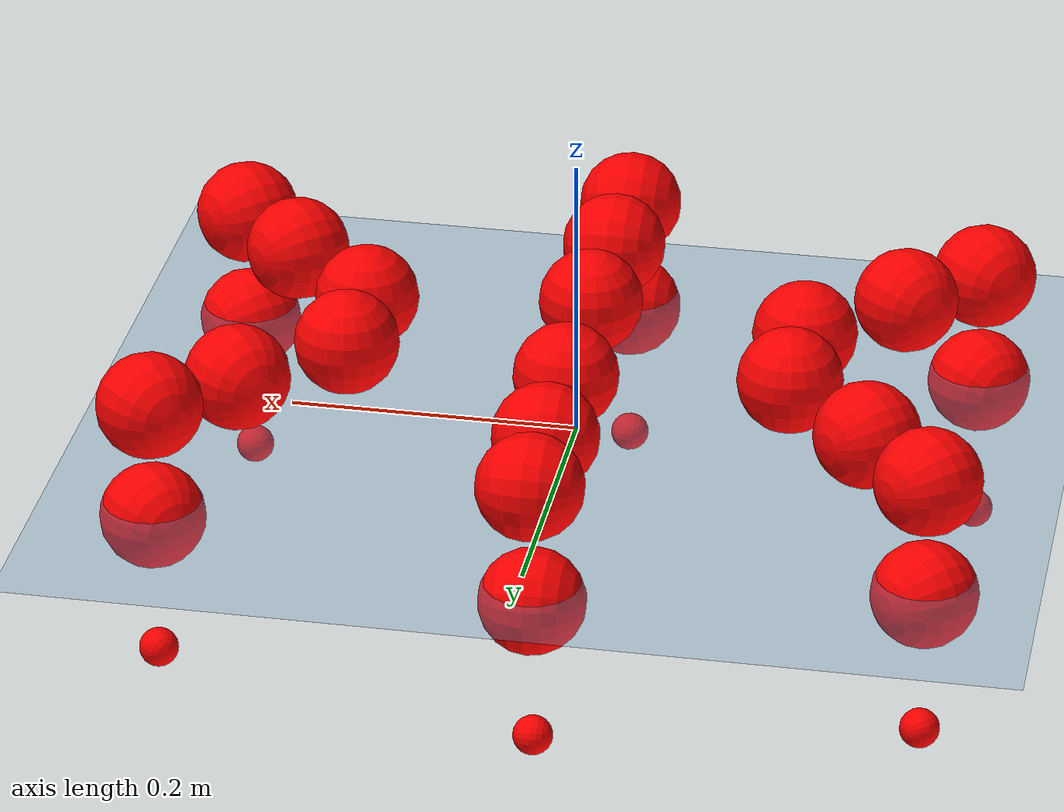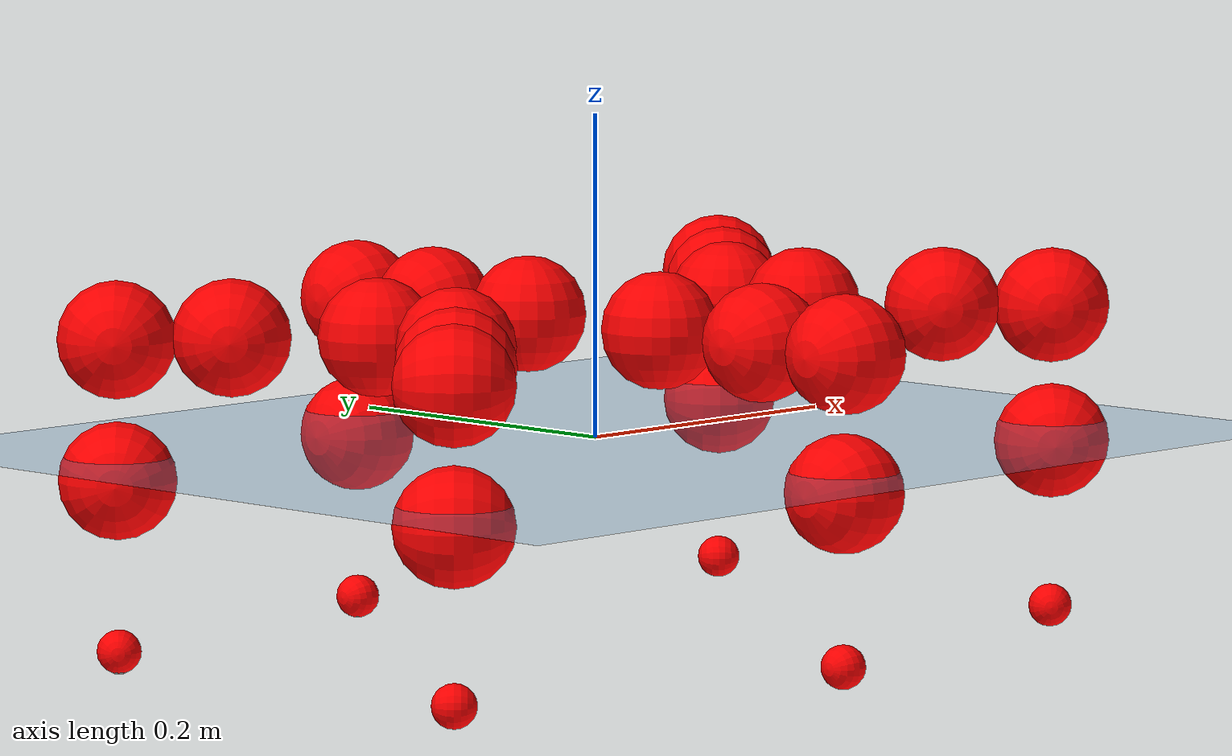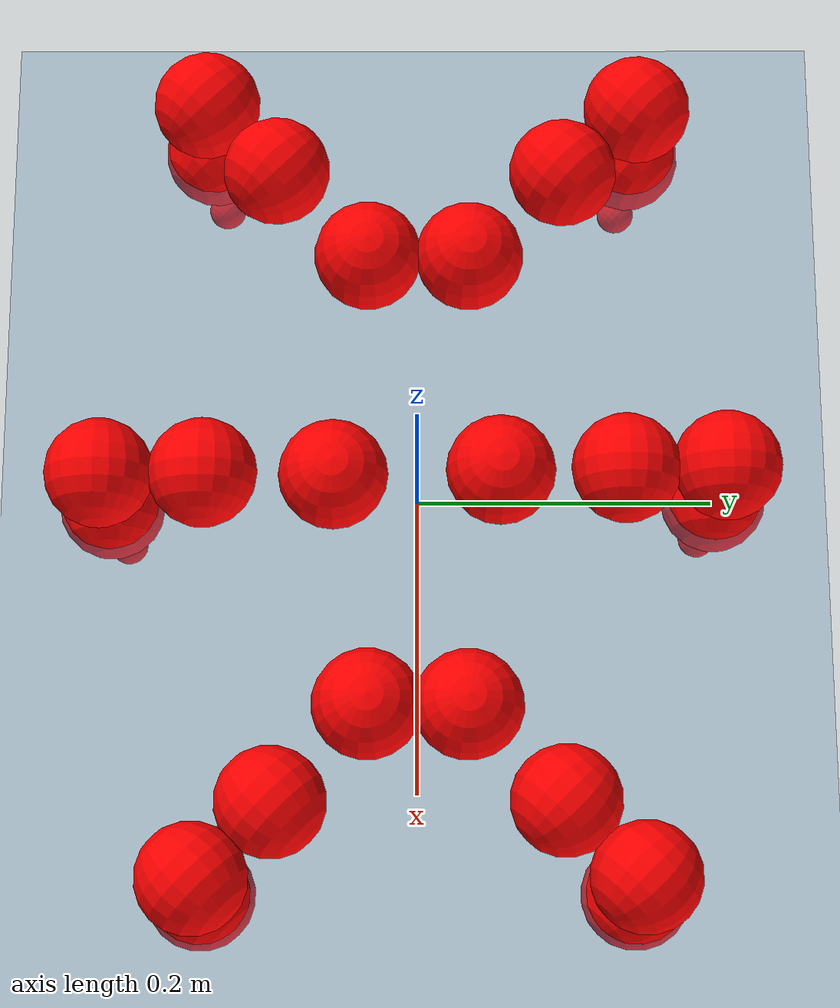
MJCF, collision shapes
<mujoco model="Golem">
  <compiler angle="radian" assetdir="assets" balanceinertia="true" inertiafromgeom="false"/>

  <option timestep="0.005" density="1.2" viscosity="2e-05"/>

  <size nkey="1"/>

  <visual>
    <quality shadowsize="8192"/>
    <map shadowclip="0.5"/>
  </visual>

  <default>
    <default class="/">
      <joint armature="0.01" damping="0.01" frictionloss="0.01"/>
      <geom contype="0" conaffinity="0" group="1" solref="-1000 -80"/>
      <site size="0.01 0.005 0.005" group="5"/>
      <general forcelimited="true" biastype="affine" gainprm="25" biasprm="0 -25 -0.5"/>
      <default class="visual">
        <geom type="mesh" group="2"/>
      </default>
      <default class="collision">
        <geom group="3"/>
      </default>
      <default class="foot">
        <geom size="0.01 0 0" condim="6" group="4" priority="1" solimp="0.015 1 0.01"/>
      </default>
      <default class="reward_collision_sphere">
        <geom group="5" rgba="1 0 0 1"/>
      </default>
    </default>
  </default>

  <asset>
    <texture type="skybox" colorspace="auto" name="//unnamed_texture_0" builtin="gradient" rgb1="0.95 0.95 0.95" rgb2="0.95 0.95 0.95" width="100" height="600"/>
    <texture type="2d" colorspace="auto" name="texplane" builtin="checker" rgb1="0.345 0.575 0.748" rgb2="0.345 0.575 0.748" markrgb="1 1 1" width="512" height="512"/>
    <material name="MatPlane" class="/" texture="texplane" texuniform="true" texrepeat="2 2" specular="0.9"/>
    <mesh name="body" class="/" file="body.stl" scale="0.001 0.001 0.001"/>
    <mesh name="coxa" class="/" file="coxa.stl" scale="0.001 0.001 0.001"/>
    <mesh name="femur" class="/" file="femur.stl" scale="0.001 0.001 0.001"/>
    <mesh name="tibia" class="/" file="tibia.stl" scale="0.001 0.001 0.001"/>
    <mesh name="tarsus" class="/" file="tarsus.stl" scale="0.001 0.001 0.001"/>
  </asset>

  <worldbody>
    <geom name="floor" class="/" size="100 100 0.125" type="plane" group="0" material="MatPlane"/>
    <light name="toplight_shadow" class="/" pos="0 0 5" dir="0.0990148 0.0990148 -0.990148" type="directional" ambient="0.04 0.04 0.04" diffuse="0.55 0.55 0.55" specular="0.12 0.12 0.12"/>
    <light name="toplight_fill" class="/" pos="0 0 5" dir="0.0990148 0.0990148 -0.990148" type="directional" castshadow="false" ambient="0.04 0.04 0.04" diffuse="0.3 0.3 0.3" specular="0.08 0.08 0.08"/>
    <body name="trunk" pos="-0.000505797 0.000442727 1.62753e-05" quat="1 9.28318e-06 1.00565e-05 2.65347e-06">
      <inertial pos="8.58635e-05 -0.00082456 -0.00195716" quat="0.999989 -0.0029538 0.00280746 0.00225171" mass="2.78273" diaginertia="0.00905361 0.00109465 0.0164334"/>
      <joint name="//unnamed_joint_0" type="free"/>
      <geom name="//unnamed_geom_1" class="/" pos="0 0 0.070493" quat="1 0 0 0" type="mesh" rgba="0.9 0.9 0.9 1" mesh="body"/>
      <site name="imu" class="/" pos="0.127503 0.00259451 0.105015" size="0.00904858"/>
      <camera name="track" class="/" pos="0 -1.2782 0" quat="0.707107 0.707107 0 0" mode="trackcom"/>
      <camera name="ego_camera" class="/" pos="0.126623 0 0.110145" quat="-0.5 -0.5 0.5 0.5"/>
      <body name="coxa_RR" pos="-0.173147 -0.0537144 0.0721158" quat="0.38268 -5.65467e-05 -7.83518e-06 -0.923881">
        <inertial pos="-4.26504e-05 0.000939044 0.00116849" quat="1 -0.000768834 -0.000280821 0.000293888" mass="0.149045" diaginertia="0.00884747 0.0010909 0.0162093"/>
        <joint name="coxa_joint_RR" class="/" pos="0 0 0" axis="-0.0049008 0.00224077 -0.999985" range="-3.1262 3.13936" armature="0.00927089" damping="0" frictionloss="0.00909347"/>
        <geom name="//unnamed_geom_2" class="/" type="mesh" rgba="0.2 0.2 0.2 1" mesh="coxa"/>
        <geom name="//unnamed_geom_3" class="reward_collision_sphere" size="0.0361943" pos="-0.0292206 0 0"/>
        <body name="femur_RR" pos="0.0586453 0.000298343 -0.00145967" quat="0.499609 -0.500237 0.499966 0.500187">
          <inertial pos="-1.01376e-05 8.42764e-05 0.000912909" quat="0.999999 0.000339697 -4.38863e-05 0.00150959" mass="0.146545" diaginertia="0.00882927 0.00105636 0.0159173"/>
          <joint name="femur_joint_RR" class="/" pos="0 0 0" axis="0.00420145 0.00247583 -0.999988" range="-3.13762 3.12744" armature="0.0090254" damping="0.000765623" frictionloss="0.00862652"/>
          <geom name="//unnamed_geom_4" class="/" type="mesh" rgba="0.9 0.9 0.9 1" mesh="femur"/>
          <geom name="//unnamed_geom_5" class="reward_collision_sphere" size="0.0361943"/>
          <body name="tibia_RR" pos="0.00149717 -0.0686343 -0.000714113" quat="-4.49083e-05 1 7.75826e-05 9.52925e-05">
            <inertial pos="5.14831e-05 -0.00105293 -9.33484e-05" quat="0.999979 0.00543231 -0.00352061 -0.000916496" mass="0.148205" diaginertia="0.00885239 0.00106882 0.0163099"/>
            <joint name="tibia_joint_RR" class="/" pos="0 0 0" axis="0.00163609 0.0012083 0.999998" stiffness="0.000278832" range="-3.15112 3.13938" armature="0.00910787" damping="0" frictionloss="0.00939775"/>
            <geom name="//unnamed_geom_6" class="/" type="mesh" rgba="0.2 0.2 0.2 1" mesh="tibia"/>
            <geom name="//unnamed_geom_7" class="reward_collision_sphere" size="0.0361943"/>
            <body name="tarsus_RR" pos="0.0824527 -0.00123113 0.000149299" quat="1 -0.00035995 -0.000301297 6.28645e-06">
              <inertial pos="0.0583745 0.000316296 0.000488709" quat="0.497384 0.501115 0.499075 0.502412" mass="0.148332" diaginertia="0.00875072 0.00105844 0.0160828"/>
              <joint name="tarsus_joint_RR" class="/" pos="0 0 0" axis="0.00012285 -0.000440069 1" range="-3.12743 3.129" armature="0.00919737" damping="0.00812205" frictionloss="0.0090522"/>
              <geom name="//unnamed_geom_8" class="/" type="mesh" rgba="0.9 0.9 0.9 1" mesh="tarsus"/>
              <geom name="foot_1" class="foot" size="0.00860055" pos="0.10909 0 0" quat="0 -0.707107 0 0.707107"/>
              <geom name="//unnamed_geom_10" class="reward_collision_sphere" size="0.0361943"/>
              <geom name="//unnamed_geom_11" class="reward_collision_sphere" size="0.0135729" pos="0.104707 0 0"/>
              <site name="foot_1" class="foot" pos="0.10909 0 0" quat="0 -0.707107 0 0.707107" size="0.00904858"/>
            </body>
          </body>
        </body>
      </body>
      <body name="coxa_RM" pos="0.000168217 -0.0847026 0.0708888" quat="0.70733 0.000106368 0.000683729 -0.706883">
        <inertial pos="-0.000205377 -4.48978e-05 -0.000112793" quat="1 -0.000208743 0.000354785 -0.000208789" mass="0.148587" diaginertia="0.00878126 0.00106898 0.0162126"/>
        <joint name="coxa_joint_RM" class="/" pos="0 0 0" axis="0.00058178 -0.00225641 -0.999997" range="-3.13718 3.13464" armature="0.00891042" damping="0.00731215" frictionloss="0.00872003"/>
        <geom name="//unnamed_geom_12" class="/" type="mesh" rgba="0.2 0.2 0.2 1" mesh="coxa"/>
        <geom name="//unnamed_geom_13" class="reward_collision_sphere" size="0.0361943" pos="-0.0292206 0 0"/>
        <body name="femur_RM" pos="0.0566628 -0.00139136 9.81986e-05" quat="0.500082 -0.49994 0.499728 0.50025">
          <inertial pos="0.00119829 0.000596117 7.77543e-05" quat="0.999995 -0.00178674 -0.00215535 0.00120616" mass="0.14659" diaginertia="0.00858721 0.00105424 0.0157926"/>
          <joint name="femur_joint_RM" class="/" pos="0 0 0" axis="0.00187047 0.00179425 -0.999997" range="-3.14154 3.12037" armature="0.00896451" damping="0.00474983" frictionloss="0.00946685"/>
          <geom name="//unnamed_geom_14" class="/" type="mesh" rgba="0.9 0.9 0.9 1" mesh="femur"/>
          <geom name="//unnamed_geom_15" class="reward_collision_sphere" size="0.0361943"/>
          <body name="tibia_RM" pos="0.00104486 -0.0680533 -0.000267675" quat="0.000337978 1 0.000129862 0.000154079">
            <inertial pos="0.000886267 0.00122495 0.000186491" quat="0.999992 -0.000104903 0.0036533 0.00177923" mass="0.150432" diaginertia="0.00887207 0.00108057 0.016425"/>
            <joint name="tibia_joint_RM" class="/" pos="0 0 0" axis="8.87324e-05 0.00170977 0.999999" range="-3.14555 3.12446" armature="0.00922088" damping="0.0117603" frictionloss="0.00898516"/>
            <geom name="//unnamed_geom_16" class="/" type="mesh" rgba="0.2 0.2 0.2 1" mesh="tibia"/>
            <geom name="//unnamed_geom_17" class="reward_collision_sphere" size="0.0361943"/>
            <body name="tarsus_RM" pos="0.0838276 -5.6334e-05 0.000345695" quat="1 4.61614e-05 6.77095e-06 5.50018e-06">
              <inertial pos="0.0589478 0.000359778 -0.000215212" quat="0.498754 0.500699 0.500373 0.500173" mass="0.151446" diaginertia="0.00876522 0.00107443 0.0165863"/>
              <joint name="tarsus_joint_RM" class="/" pos="0 0 0" axis="0.00128935 0.00073584 0.999999" range="-3.13747 3.13371" armature="0.00891318" damping="0.00759627" frictionloss="0.00909033"/>
              <geom name="//unnamed_geom_18" class="/" type="mesh" rgba="0.9 0.9 0.9 1" mesh="tarsus"/>
              <geom name="foot_2" class="foot" size="0.00887144" pos="0.10909 0 0" quat="0 -0.707107 0 0.707107"/>
              <geom name="//unnamed_geom_20" class="reward_collision_sphere" size="0.0361943"/>
              <geom name="//unnamed_geom_21" class="reward_collision_sphere" size="0.0135729" pos="0.104707 0 0"/>
              <site name="foot_2" class="foot" pos="0.10909 0 0" quat="0 -0.707107 0 0.707107" size="0.00904858"/>
            </body>
          </body>
        </body>
      </body>
      <body name="coxa_RF" pos="0.174018 -0.0532679 0.0718337" quat="0.923783 -2.59036e-05 0.000191052 -0.382916">
        <inertial pos="7.3085e-05 -0.00107822 0.000146974" quat="0.999989 -0.0019893 -0.00414487 0.000312182" mass="0.148685" diaginertia="0.00889668 0.00107134 0.0163096"/>
        <joint name="coxa_joint_RF" class="/" pos="0 0 0" axis="0.0025831 -0.000548818 -0.999997" range="-3.11585 3.11993" armature="0.00892944" damping="0" frictionloss="0.00918659"/>
        <geom name="//unnamed_geom_22" class="/" type="mesh" rgba="0.2 0.2 0.2 1" mesh="coxa"/>
        <geom name="//unnamed_geom_23" class="reward_collision_sphere" size="0.0361943" pos="-0.0292206 0 0"/>
        <body name="femur_RF" pos="0.0584782 0.00130977 0.000198361" quat="0.499919 -0.499949 0.500051 0.50008">
          <inertial pos="0.000426804 0.000825314 -0.000149997" quat="0.999999 0.00144962 0.000249218 -0.0003489" mass="0.149057" diaginertia="0.00902306 0.00108449 0.0165822"/>
          <joint name="femur_joint_RF" class="/" pos="0 0 0" axis="-0.000638795 0.00119679 -0.999999" range="-3.14136 3.15736" armature="0.00893232" damping="0.0101629" frictionloss="0.00948325"/>
          <geom name="//unnamed_geom_24" class="/" type="mesh" rgba="0.9 0.9 0.9 1" mesh="femur"/>
          <geom name="//unnamed_geom_25" class="reward_collision_sphere" size="0.0361943"/>
          <body name="tibia_RF" pos="0.000373984 -0.0686681 -0.00063503" quat="-2.01917e-06 1 4.05461e-07 2.33134e-07">
            <inertial pos="0.000235437 0.000315207 -0.00150616" quat="0.999997 -0.000368414 -0.00187578 0.00167122" mass="0.149375" diaginertia="0.00880976 0.0010599 0.016296"/>
            <joint name="tibia_joint_RF" class="/" pos="0 0 0" axis="-0.00275377 -0.00135061 0.999995" range="-3.13292 3.11975" armature="0.0089563" damping="0.0109567" frictionloss="0.00864594"/>
            <geom name="//unnamed_geom_26" class="/" type="mesh" rgba="0.2 0.2 0.2 1" mesh="tibia"/>
            <geom name="//unnamed_geom_27" class="reward_collision_sphere" size="0.0361943"/>
            <body name="tarsus_RF" pos="0.0858082 0.000588975 -0.000172483" quat="1 4.9556e-05 -3.43593e-05 -1.29177e-05">
              <inertial pos="0.0589647 0.000334223 -0.000227471" quat="0.499389 0.5004 0.499096 0.501112" mass="0.146293" diaginertia="0.00871825 0.00104547 0.0157718"/>
              <joint name="tarsus_joint_RF" class="/" pos="0 0 0" axis="-0.00338069 -0.00260621 0.999991" stiffness="0.0233511" range="-3.14036 3.14123" armature="0.00913968" damping="0" frictionloss="0.0092395"/>
              <geom name="//unnamed_geom_28" class="/" type="mesh" rgba="0.9 0.9 0.9 1" mesh="tarsus"/>
              <geom name="foot_3" class="foot" size="0.0088695" pos="0.10909 0 0" quat="0 -0.707107 0 0.707107"/>
              <geom name="//unnamed_geom_30" class="reward_collision_sphere" size="0.0361943"/>
              <geom name="//unnamed_geom_31" class="reward_collision_sphere" size="0.0135729" pos="0.104707 0 0"/>
              <site name="foot_3" class="foot" pos="0.10909 0 0" quat="0 -0.707107 0 0.707107" size="0.00904858"/>
            </body>
          </body>
        </body>
      </body>
      <body name="coxa_LR" pos="-0.172646 0.0554667 0.0724769" quat="0.382655 -0.00011884 0.000150384 0.923891">
        <inertial pos="0.000495677 -0.000382795 0.00187826" quat="1 -0.000715772 -0.000139663 -5.15998e-05" mass="0.149632" diaginertia="0.00897781 0.00107435 0.015957"/>
        <joint name="coxa_joint_LR" class="/" pos="0 0 0" axis="0.000158867 0.00102854 -0.999999" range="-3.12142 3.11914" armature="0.00865094" damping="0.00582962" frictionloss="0.00899365"/>
        <geom name="//unnamed_geom_32" class="/" type="mesh" rgba="0.2 0.2 0.2 1" mesh="coxa"/>
        <geom name="//unnamed_geom_33" class="reward_collision_sphere" size="0.0361943" pos="-0.0292206 0 0"/>
        <body name="femur_LR" pos="0.0586342 -0.0021547 -0.000559935" quat="0.500224 -0.499981 0.499669 0.500125">
          <inertial pos="0.000195778 -0.00193819 0.000446332" quat="1 -0.000200142 -0.000315794 0.000244749" mass="0.148432" diaginertia="0.00862499 0.00105892 0.0159056"/>
          <joint name="femur_joint_LR" class="/" pos="0 0 0" axis="0.00139519 -0.00170767 0.999998" range="-3.12548 3.14184" armature="0.00884745" damping="0" frictionloss="0.00902854"/>
          <geom name="//unnamed_geom_34" class="/" type="mesh" rgba="0.9 0.9 0.9 1" mesh="femur"/>
          <geom name="//unnamed_geom_35" class="reward_collision_sphere" size="0.0361943"/>
          <body name="tibia_LR" pos="0.00145483 -0.069531 -0.00325405" quat="0.00030869 1 0.000281797 0.000102467">
            <inertial pos="-0.00110158 -3.6788e-05 0.000962608" quat="0.999997 0.00102518 0.00230362 -0.000510941" mass="0.149456" diaginertia="0.00877252 0.0010795 0.016258"/>
            <joint name="tibia_joint_LR" class="/" pos="0 0 0" axis="-0.00201215 0.00170706 -0.999997" range="-3.15763 3.15588" armature="0.00884904" damping="0" frictionloss="0.00900976"/>
            <geom name="//unnamed_geom_36" class="/" type="mesh" rgba="0.2 0.2 0.2 1" mesh="tibia"/>
            <geom name="//unnamed_geom_37" class="reward_collision_sphere" size="0.0361943"/>
            <body name="tarsus_LR" pos="0.0859074 3.12074e-05 -0.00038187" quat="1 -0.000190104 8.87935e-05 5.37605e-05">
              <inertial pos="0.060115 -0.00085377 -0.000610997" quat="0.503013 0.498423 0.497544 0.501002" mass="0.147913" diaginertia="0.00869031 0.00108119 0.0161061"/>
              <joint name="tarsus_joint_LR" class="/" pos="0 0 0" axis="0.00766386 -0.00116319 -0.99997" range="-3.11961 3.15486" armature="0.00917036" damping="0" frictionloss="0.00941787"/>
              <geom name="//unnamed_geom_38" class="/" type="mesh" rgba="0.9 0.9 0.9 1" mesh="tarsus"/>
              <geom name="foot_4" class="foot" size="0.00957849" pos="0.10909 0 0" quat="0.707107 0 -0.707107 0"/>
              <geom name="//unnamed_geom_40" class="reward_collision_sphere" size="0.0361943"/>
              <geom name="//unnamed_geom_41" class="reward_collision_sphere" size="0.0135729" pos="0.104707 0 0"/>
              <site name="foot_4" class="foot" pos="0.10909 0 0" quat="0.707107 0 -0.707107 0" size="0.00904858"/>
            </body>
          </body>
        </body>
      </body>
      <body name="coxa_LM" pos="-0.00250503 0.0839144 0.0723412" quat="0.707072 5.31628e-06 3.90828e-05 0.707141">
        <inertial pos="0.000564664 0.00029912 -0.00034833" quat="0.999996 -0.00104686 0.00233645 -0.00114082" mass="0.150584" diaginertia="0.00887453 0.00108383 0.0164879"/>
        <joint name="coxa_joint_LM" class="/" pos="0 0 0" axis="0.00592175 0.00705127 -0.999958" range="-3.14568 3.14106" armature="0.00885582" damping="0.0082253" frictionloss="0.00869725"/>
        <geom name="//unnamed_geom_42" class="/" type="mesh" rgba="0.2 0.2 0.2 1" mesh="coxa"/>
        <geom name="//unnamed_geom_43" class="reward_collision_sphere" size="0.0361943" pos="-0.0292206 0 0"/>
        <body name="femur_LM" pos="0.0531853 0.0014149 -0.000526863" quat="0.500241 -0.500078 0.499794 0.499886">
          <inertial pos="-0.000522423 -0.000375623 0.000269672" quat="1 6.76896e-05 0.000630318 0.000497178" mass="0.146282" diaginertia="0.00866457 0.00108156 0.0162728"/>
          <joint name="femur_joint_LM" class="/" pos="0 0 0" axis="0.00224554 0.00124997 0.999997" stiffness="0.000242061" range="-3.14534 3.1438" armature="0.00884564" damping="0" frictionloss="0.00926607"/>
          <geom name="//unnamed_geom_44" class="/" type="mesh" rgba="0.9 0.9 0.9 1" mesh="femur"/>
          <geom name="//unnamed_geom_45" class="reward_collision_sphere" size="0.0361943"/>
          <body name="tibia_LM" pos="0.000800514 -0.0665339 0.00204551" quat="0.000145499 1 -0.000123442 -2.67714e-06">
            <inertial pos="-0.000873881 -0.00109936 -0.000481125" quat="0.999993 -0.00186437 -0.0015597 -0.00283397" mass="0.147445" diaginertia="0.00873956 0.00107831 0.0161424"/>
            <joint name="tibia_joint_LM" class="/" pos="0 0 0" axis="-0.00248191 -0.00110687 -0.999996" range="-3.14283 3.13881" armature="0.00895799" damping="0.00205007" frictionloss="0.008999"/>
            <geom name="//unnamed_geom_46" class="/" type="mesh" rgba="0.2 0.2 0.2 1" mesh="tibia"/>
            <geom name="//unnamed_geom_47" class="reward_collision_sphere" size="0.0361943"/>
            <body name="tarsus_LM" pos="0.0869726 -0.00053824 -0.000992206" quat="1 -0.000167994 -6.20066e-05 8.86588e-05">
              <inertial pos="0.0582257 0.00107989 -0.000965677" quat="0.500732 0.502937 0.498013 0.498302" mass="0.14855" diaginertia="0.00890079 0.00107178 0.0161278"/>
              <joint name="tarsus_joint_LM" class="/" pos="0 0 0" axis="-0.00171506 -0.00437649 -0.999989" range="-3.13222 3.13595" armature="0.00907873" damping="0.00369012" frictionloss="0.00937281"/>
              <geom name="//unnamed_geom_48" class="/" type="mesh" rgba="0.9 0.9 0.9 1" mesh="tarsus"/>
              <geom name="foot_5" class="foot" size="0.00908937" pos="0.10909 0 0" quat="0.707107 0 -0.707107 0"/>
              <geom name="//unnamed_geom_50" class="reward_collision_sphere" size="0.0361943"/>
              <geom name="//unnamed_geom_51" class="reward_collision_sphere" size="0.0135729" pos="0.104707 0 0"/>
              <site name="foot_5" class="foot" pos="0.10909 0 0" quat="0.707107 0 -0.707107 0" size="0.00904858"/>
            </body>
          </body>
        </body>
      </body>
      <body name="coxa_LF" pos="0.174123 0.0530358 0.0708267" quat="0.923883 6.9692e-05 0.000204964 0.382675">
        <inertial pos="0.000512489 -0.000113565 0.000626207" quat="0.999999 -9.32236e-05 0.000252041 0.00107053" mass="0.149982" diaginertia="0.00870817 0.00108128 0.0163893"/>
        <joint name="coxa_joint_LF" class="/" pos="0 0 0" axis="0.00297473 -0.00518804 -0.999982" range="-3.14891 3.14072" armature="0.00899806" damping="0.00852889" frictionloss="0.00980583"/>
        <geom name="//unnamed_geom_52" class="/" type="mesh" rgba="0.2 0.2 0.2 1" mesh="coxa"/>
        <geom name="//unnamed_geom_53" class="reward_collision_sphere" size="0.0361943" pos="-0.0292206 0 0"/>
        <body name="femur_LF" pos="0.0580878 -3.07955e-05 0.000127603" quat="0.500059 -0.49995 0.500035 0.499956">
          <inertial pos="-0.00158612 0.000249292 0.00167148" quat="1 -0.000539618 8.25125e-05 2.61818e-05" mass="0.149491" diaginertia="0.00883382 0.00106917 0.016204"/>
          <joint name="femur_joint_LF" class="/" pos="0 0 0" axis="-8.76615e-05 0.000398645 1" stiffness="0.000131964" range="-3.14518 3.14167" armature="0.0087152" damping="0" frictionloss="0.00907254"/>
          <geom name="//unnamed_geom_54" class="/" type="mesh" rgba="0.9 0.9 0.9 1" mesh="femur"/>
          <geom name="//unnamed_geom_55" class="reward_collision_sphere" size="0.0361943"/>
          <body name="tibia_LF" pos="-0.00037994 -0.0691161 0.000765134" quat="-0.000239442 1 -0.000434561 -2.93554e-05">
            <inertial pos="0.000839791 -0.00155764 -0.000666972" quat="1 -1.19947e-06 0.000246001 3.86108e-05" mass="0.143457" diaginertia="0.00842939 0.00104205 0.0157453"/>
            <joint name="tibia_joint_LF" class="/" pos="0 0 0" axis="0.00280489 -0.00133804 -0.999995" stiffness="0.00153783" range="-3.13694 3.14844" armature="0.00881318" damping="0" frictionloss="0.00892126"/>
            <geom name="//unnamed_geom_56" class="/" type="mesh" rgba="0.2 0.2 0.2 1" mesh="tibia"/>
            <geom name="//unnamed_geom_57" class="reward_collision_sphere" size="0.0361943"/>
            <body name="tarsus_LF" pos="0.0849806 0.000598991 0.000914317" quat="1 0.000176014 0.000124604 -5.95475e-05">
              <inertial pos="0.0589423 -0.000511091 -0.000517613" quat="0.502315 0.497624 0.500412 0.499637" mass="0.145468" diaginertia="0.00851123 0.0010442 0.0157138"/>
              <joint name="tarsus_joint_LF" class="/" pos="0 0 0" axis="-0.00323398 -0.00418853 -0.999986" range="-3.13334 3.14096" armature="0.0090434" damping="0.0153721" frictionloss="0.0084063"/>
              <geom name="//unnamed_geom_58" class="/" type="mesh" rgba="0.9 0.9 0.9 1" mesh="tarsus"/>
              <geom name="foot_6" class="foot" size="0.00876252" pos="0.10909 0 0" quat="0.707107 0 -0.707107 0"/>
              <geom name="//unnamed_geom_60" class="reward_collision_sphere" size="0.0361943"/>
              <geom name="//unnamed_geom_61" class="reward_collision_sphere" size="0.0135729" pos="0.104707 0 0"/>
              <site name="foot_6" class="foot" pos="0.10909 0 0" quat="0.707107 0 -0.707107 0" size="0.00904858"/>
            </body>
          </body>
        </body>
      </body>
    </body>
  </worldbody>

  <contact>
    <pair class="/" geom1="floor" geom2="foot_1" name="//unnamed_contact_0"/>
    <pair class="/" geom1="floor" geom2="foot_2" name="//unnamed_contact_1"/>
    <pair class="/" geom1="floor" geom2="foot_3" name="//unnamed_contact_2"/>
    <pair class="/" geom1="floor" geom2="foot_4" name="//unnamed_contact_3"/>
    <pair class="/" geom1="floor" geom2="foot_5" name="//unnamed_contact_4"/>
    <pair class="/" geom1="floor" geom2="foot_6" name="//unnamed_contact_5"/>
  </contact>

  <actuator>
    <general name="coxa_joint_RR" class="/" joint="coxa_joint_RR" forcerange="-6.77351 6.77351" gainprm="21.7476" biasprm="0 -21.7476 -0.482733"/>
    <general name="femur_joint_RR" class="/" joint="femur_joint_RR" forcerange="-6.5321 6.5321" gainprm="21.7476" biasprm="0 -21.7476 -0.482733"/>
    <general name="tibia_joint_RR" class="/" joint="tibia_joint_RR" forcerange="-6.68083 6.68083" gainprm="21.7476" biasprm="0 -21.7476 -0.482733"/>
    <general name="tarsus_joint_RR" class="/" joint="tarsus_joint_RR" forcerange="-6.75421 6.75421" gainprm="21.7476" biasprm="0 -21.7476 -0.482733"/>
    <general name="coxa_joint_RM" class="/" joint="coxa_joint_RM" forcerange="-6.69694 6.69694" gainprm="21.7476" biasprm="0 -21.7476 -0.482733"/>
    <general name="femur_joint_RM" class="/" joint="femur_joint_RM" forcerange="-6.59659 6.59659" gainprm="21.7476" biasprm="0 -21.7476 -0.482733"/>
    <general name="tibia_joint_RM" class="/" joint="tibia_joint_RM" forcerange="-6.66048 6.66048" gainprm="21.7476" biasprm="0 -21.7476 -0.482733"/>
    <general name="tarsus_joint_RM" class="/" joint="tarsus_joint_RM" forcerange="-6.91995 6.91995" gainprm="21.7476" biasprm="0 -21.7476 -0.482733"/>
    <general name="coxa_joint_RF" class="/" joint="coxa_joint_RF" forcerange="-6.37629 6.37629" gainprm="21.7476" biasprm="0 -21.7476 -0.482733"/>
    <general name="femur_joint_RF" class="/" joint="femur_joint_RF" forcerange="-6.34835 6.34835" gainprm="21.7476" biasprm="0 -21.7476 -0.482733"/>
    <general name="tibia_joint_RF" class="/" joint="tibia_joint_RF" forcerange="-6.4438 6.4438" gainprm="21.7476" biasprm="0 -21.7476 -0.482733"/>
    <general name="tarsus_joint_RF" class="/" joint="tarsus_joint_RF" forcerange="-6.72319 6.72319" gainprm="21.7476" biasprm="0 -21.7476 -0.482733"/>
    <general name="coxa_joint_LR" class="/" joint="coxa_joint_LR" forcerange="-6.81026 6.81026" gainprm="21.7476" biasprm="0 -21.7476 -0.482733"/>
    <general name="femur_joint_LR" class="/" joint="femur_joint_LR" forcerange="-6.52871 6.52871" gainprm="21.7476" biasprm="0 -21.7476 -0.482733"/>
    <general name="tibia_joint_LR" class="/" joint="tibia_joint_LR" forcerange="-6.61475 6.61475" gainprm="21.7476" biasprm="0 -21.7476 -0.482733"/>
    <general name="tarsus_joint_LR" class="/" joint="tarsus_joint_LR" forcerange="-6.80692 6.80692" gainprm="21.7476" biasprm="0 -21.7476 -0.482733"/>
    <general name="coxa_joint_LM" class="/" joint="coxa_joint_LM" forcerange="-6.49281 6.49281" gainprm="21.7476" biasprm="0 -21.7476 -0.482733"/>
    <general name="femur_joint_LM" class="/" joint="femur_joint_LM" forcerange="-6.77199 6.77199" gainprm="21.7476" biasprm="0 -21.7476 -0.482733"/>
    <general name="tibia_joint_LM" class="/" joint="tibia_joint_LM" forcerange="-6.79986 6.79986" gainprm="21.7476" biasprm="0 -21.7476 -0.482733"/>
    <general name="tarsus_joint_LM" class="/" joint="tarsus_joint_LM" forcerange="-6.52664 6.52664" gainprm="21.7476" biasprm="0 -21.7476 -0.482733"/>
    <general name="coxa_joint_LF" class="/" joint="coxa_joint_LF" forcerange="-6.4767 6.4767" gainprm="21.7476" biasprm="0 -21.7476 -0.482733"/>
    <general name="femur_joint_LF" class="/" joint="femur_joint_LF" forcerange="-6.80721 6.80721" gainprm="21.7476" biasprm="0 -21.7476 -0.482733"/>
    <general name="tibia_joint_LF" class="/" joint="tibia_joint_LF" forcerange="-6.40081 6.40081" gainprm="21.7476" biasprm="0 -21.7476 -0.482733"/>
    <general name="tarsus_joint_LF" class="/" joint="tarsus_joint_LF" forcerange="-6.77166 6.77166" gainprm="21.7476" biasprm="0 -21.7476 -0.482733"/>
  </actuator>

  <sensor>
    <gyro site="imu" name="imu_angular_velocity"/>
    <velocimeter site="imu" name="imu_linear_velocity"/>
    <framelinvel objtype="site" objname="foot_1" name="foot_1_global_linear_velocity"/>
    <framelinvel objtype="site" objname="foot_2" name="foot_2_global_linear_velocity"/>
    <framelinvel objtype="site" objname="foot_3" name="foot_3_global_linear_velocity"/>
    <framelinvel objtype="site" objname="foot_4" name="foot_4_global_linear_velocity"/>
    <framelinvel objtype="site" objname="foot_5" name="foot_5_global_linear_velocity"/>
    <framelinvel objtype="site" objname="foot_6" name="foot_6_global_linear_velocity"/>
  </sensor>

  <keyframe>
    <key name="home" qpos="0 0 0.1457 1 0 0 0 0 0 0 0 0 0 0 0 0 0 0 0 0 0 0 0 0 0 0 0 0 0 0 0"/>
  </keyframe>
</mujoco>
